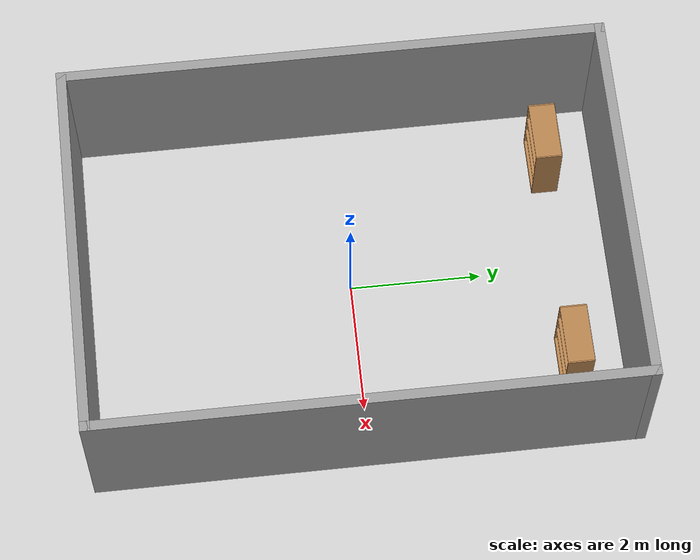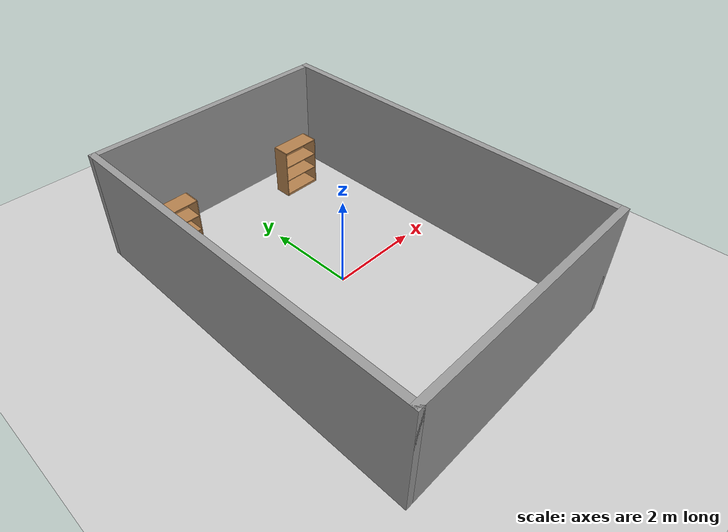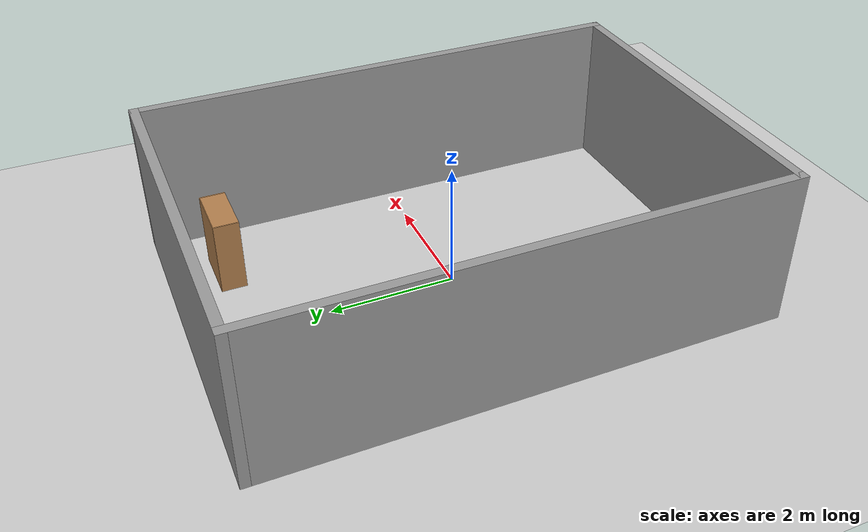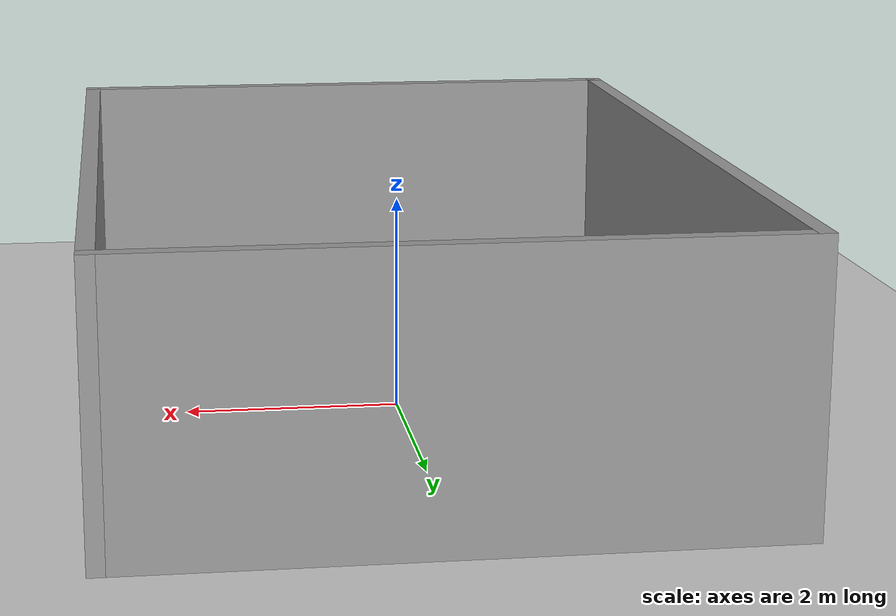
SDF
<sdf version="1.6">
 <world name="default">
  <light name="sun" type="directional">
   <pose>0 0 10 0 -0 0</pose>
   <diffuse>0.8 0.8 0.8 1</diffuse>
   <specular>0.2 0.2 0.2 1</specular>
   <attenuation>
    <range>1000</range>
    <constant>0.9</constant>
    <linear>0.01</linear>
    <quadratic>0.001</quadratic>
   </attenuation>
   <direction>-0.5 0.1 -0.9</direction>
  </light>
  <model name="ground_plane">
   <static>1</static>
   <link name="link">
    <collision name="collision">
     <geometry><plane><normal>0 0 1</normal><size>100 100</size></plane></geometry>
     <surface>
      <contact><collide_bitmask>65535</collide_bitmask></contact>
      <friction><ode><mu>100</mu><mu2>50</mu2></ode></friction>
     </surface>
    </collision>
    <visual name="visual">
     <cast_shadows>0</cast_shadows>
     <geometry><plane><normal>0 0 1</normal><size>100 100</size></plane></geometry>
     <material>
      <script><uri>file://media/materials/scripts/gazebo.material</uri><name>Gazebo/Grey</name></script>
     </material>
    </visual>
   </link>
  </model>
  <gravity>0 0 -9.8</gravity>
  <magnetic_field>6e-06 2.3e-05 -4.2e-05</magnetic_field>
  <atmosphere type="adiabatic"/>
  <physics name="default_physics" default="0" type="ode">
   <max_step_size>0.004</max_step_size>
   <real_time_factor>1</real_time_factor>
   <real_time_update_rate>200</real_time_update_rate>
  </physics>
  <scene><ambient>0.4 0.4 0.4 1</ambient><background>0.7 0.7 0.7 1</background><shadows>0</shadows></scene>
  <audio><device>default</device></audio>
  <spherical_coordinates>
   <surface_model>EARTH_WGS84</surface_model>
   <latitude_deg>0</latitude_deg>
   <longitude_deg>0</longitude_deg>
   <elevation>0</elevation>
   <heading_deg>0</heading_deg>
  </spherical_coordinates>
  <model name="room">
   <pose>0.031206 0.006349 0 0 -0 0</pose>
   <link name="Wall_12">
    <collision name="Wall_12_Collision">
     <geometry><box><size>8.25 0.15 2.5</size></box></geometry>
     <pose>0 0 1.25 0 -0 0</pose>
    </collision>
    <visual name="Wall_12_Visual">
     <pose>0 0 1.25 0 -0 0</pose>
     <geometry><box><size>8.25 0.15 2.5</size></box></geometry>
     <material>
      <script><uri>file://media/materials/scripts/gazebo.material</uri><name>Gazebo/Grey</name></script>
      <ambient>1 1 1 1</ambient>
     </material>
     <meta><layer>0</layer></meta>
    </visual>
    <pose>-2.8 0 0 0 -0 -1.5708</pose>
   </link>
   <link name="Wall_13">
    <collision name="Wall_13_Collision">
     <geometry><box><size>5.75 0.15 2.5</size></box></geometry>
     <pose>0 0 1.25 0 -0 0</pose>
    </collision>
    <visual name="Wall_13_Visual">
     <pose>0 0 1.25 0 -0 0</pose>
     <geometry><box><size>5.75 0.15 2.5</size></box></geometry>
     <material>
      <script><uri>file://media/materials/scripts/gazebo.material</uri><name>Gazebo/Grey</name></script>
      <ambient>1 1 1 1</ambient>
     </material>
     <meta><layer>0</layer></meta>
    </visual>
    <pose>-0 -4.05 0 0 -0 0</pose>
   </link>
   <link name="Wall_14">
    <collision name="Wall_14_Collision">
     <geometry><box><size>8.25 0.15 2.5</size></box></geometry>
     <pose>0 0 1.25 0 -0 0</pose>
    </collision>
    <visual name="Wall_14_Visual">
     <pose>0 0 1.25 0 -0 0</pose>
     <geometry><box><size>8.25 0.15 2.5</size></box></geometry>
     <material>
      <script><uri>file://media/materials/scripts/gazebo.material</uri><name>Gazebo/Grey</name></script>
      <ambient>1 1 1 1</ambient>
     </material>
     <meta><layer>0</layer></meta>
    </visual>
    <pose>2.8 0 0 0 -0 1.5708</pose>
   </link>
   <link name="Wall_15">
    <collision name="Wall_15_Collision">
     <geometry><box><size>5.75 0.15 2.5</size></box></geometry>
     <pose>0 0 1.25 0 -0 0</pose>
    </collision>
    <visual name="Wall_15_Visual">
     <pose>0 0 1.25 0 -0 0</pose>
     <geometry><box><size>5.75 0.15 2.5</size></box></geometry>
     <material>
      <script><uri>file://media/materials/scripts/gazebo.material</uri><name>Gazebo/Grey</name></script>
      <ambient>1 1 1 1</ambient>
     </material>
     <meta><layer>0</layer></meta>
    </visual>
    <pose>-0 4.05 0 0 -0 3.14159</pose>
   </link>
   <static>1</static>
  </model>
  <model name="bookshelf">
   <static>1</static>
   <link name="link">
    <inertial><mass>1</mass></inertial>
    <collision name="back">
     <pose>0 0.005 0.6 0 -0 0</pose>
     <geometry><box><size>0.9 0.01 1.2</size></box></geometry>
    </collision>
    <visual name="visual1">
     <pose>0 0.005 0.6 0 -0 0</pose>
     <geometry><box><size>0.9 0.01 1.2</size></box></geometry>
     <material>
      <script><uri>file://media/materials/scripts/gazebo.material</uri><name>Gazebo/Wood</name></script>
     </material>
    </visual>
    <collision name="left_side">
     <pose>0.45 -0.195 0.6 0 -0 0</pose>
     <geometry><box><size>0.02 0.4 1.2</size></box></geometry>
    </collision>
    <visual name="visual2">
     <pose>0.45 -0.195 0.6 0 -0 0</pose>
     <geometry><box><size>0.02 0.4 1.2</size></box></geometry>
     <material>
      <script><uri>file://media/materials/scripts/gazebo.material</uri><name>Gazebo/Wood</name></script>
     </material>
    </visual>
    <collision name="right_side">
     <pose>-0.45 -0.195 0.6 0 -0 0</pose>
     <geometry><box><size>0.02 0.4 1.2</size></box></geometry>
    </collision>
    <visual name="visual3">
     <pose>-0.45 -0.195 0.6 0 -0 0</pose>
     <geometry><box><size>0.02 0.4 1.2</size></box></geometry>
     <material>
      <script><uri>file://media/materials/scripts/gazebo.material</uri><name>Gazebo/Wood</name></script>
     </material>
    </visual>
    <collision name="bottom">
     <pose>0 -0.195 0.03 0 -0 0</pose>
     <geometry><box><size>0.88 0.4 0.06</size></box></geometry>
    </collision>
    <visual name="visual4">
     <pose>0 -0.195 0.03 0 -0 0</pose>
     <geometry><box><size>0.88 0.4 0.06</size></box></geometry>
     <material>
      <script><uri>file://media/materials/scripts/gazebo.material</uri><name>Gazebo/Wood</name></script>
     </material>
    </visual>
    <collision name="top">
     <pose>0 -0.195 1.19 0 -0 0</pose>
     <geometry><box><size>0.88 0.4 0.02</size></box></geometry>
    </collision>
    <visual name="visual5">
     <pose>0 -0.195 1.19 0 -0 0</pose>
     <geometry><box><size>0.88 0.4 0.02</size></box></geometry>
     <material>
      <script><uri>file://media/materials/scripts/gazebo.material</uri><name>Gazebo/Wood</name></script>
     </material>
    </visual>
    <collision name="low_shelf">
     <pose>0 -0.195 0.43 0 -0 0</pose>
     <geometry><box><size>0.88 0.4 0.02</size></box></geometry>
    </collision>
    <visual name="visual6">
     <pose>0 -0.195 0.43 0 -0 0</pose>
     <geometry><box><size>0.88 0.4 0.02</size></box></geometry>
     <material>
      <script><uri>file://media/materials/scripts/gazebo.material</uri><name>Gazebo/Wood</name></script>
     </material>
    </visual>
    <collision name="high_shelf">
     <pose>0 -0.195 0.8 0 -0 0</pose>
     <geometry><box><size>0.88 0.4 0.02</size></box></geometry>
    </collision>
    <visual name="visual7">
     <pose>0 -0.195 0.8 0 -0 0</pose>
     <geometry><box><size>0.88 0.4 0.02</size></box></geometry>
     <material>
      <script><uri>file://media/materials/scripts/gazebo.material</uri><name>Gazebo/Wood</name></script>
     </material>
    </visual>
   </link>
   <pose>-1.7894 3.3822 0 0 -0 0</pose>
  </model>
  <model name="bookshelf_0">
   <static>1</static>
   <link name="link">
    <inertial><mass>1</mass></inertial>
    <collision name="back">
     <pose>0 0.005 0.6 0 -0 0</pose>
     <geometry><box><size>0.9 0.01 1.2</size></box></geometry>
    </collision>
    <visual name="visual1">
     <pose>0 0.005 0.6 0 -0 0</pose>
     <geometry><box><size>0.9 0.01 1.2</size></box></geometry>
     <material>
      <script><uri>file://media/materials/scripts/gazebo.material</uri><name>Gazebo/Wood</name></script>
     </material>
    </visual>
    <collision name="left_side">
     <pose>0.45 -0.195 0.6 0 -0 0</pose>
     <geometry><box><size>0.02 0.4 1.2</size></box></geometry>
    </collision>
    <visual name="visual2">
     <pose>0.45 -0.195 0.6 0 -0 0</pose>
     <geometry><box><size>0.02 0.4 1.2</size></box></geometry>
     <material>
      <script><uri>file://media/materials/scripts/gazebo.material</uri><name>Gazebo/Wood</name></script>
     </material>
    </visual>
    <collision name="right_side">
     <pose>-0.45 -0.195 0.6 0 -0 0</pose>
     <geometry><box><size>0.02 0.4 1.2</size></box></geometry>
    </collision>
    <visual name="visual3">
     <pose>-0.45 -0.195 0.6 0 -0 0</pose>
     <geometry><box><size>0.02 0.4 1.2</size></box></geometry>
     <material>
      <script><uri>file://media/materials/scripts/gazebo.material</uri><name>Gazebo/Wood</name></script>
     </material>
    </visual>
    <collision name="bottom">
     <pose>0 -0.195 0.03 0 -0 0</pose>
     <geometry><box><size>0.88 0.4 0.06</size></box></geometry>
    </collision>
    <visual name="visual4">
     <pose>0 -0.195 0.03 0 -0 0</pose>
     <geometry><box><size>0.88 0.4 0.06</size></box></geometry>
     <material>
      <script><uri>file://media/materials/scripts/gazebo.material</uri><name>Gazebo/Wood</name></script>
     </material>
    </visual>
    <collision name="top">
     <pose>0 -0.195 1.19 0 -0 0</pose>
     <geometry><box><size>0.88 0.4 0.02</size></box></geometry>
    </collision>
    <visual name="visual5">
     <pose>0 -0.195 1.19 0 -0 0</pose>
     <geometry><box><size>0.88 0.4 0.02</size></box></geometry>
     <material>
      <script><uri>file://media/materials/scripts/gazebo.material</uri><name>Gazebo/Wood</name></script>
     </material>
    </visual>
    <collision name="low_shelf">
     <pose>0 -0.195 0.43 0 -0 0</pose>
     <geometry><box><size>0.88 0.4 0.02</size></box></geometry>
    </collision>
    <visual name="visual6">
     <pose>0 -0.195 0.43 0 -0 0</pose>
     <geometry><box><size>0.88 0.4 0.02</size></box></geometry>
     <material>
      <script><uri>file://media/materials/scripts/gazebo.material</uri><name>Gazebo/Wood</name></script>
     </material>
    </visual>
    <collision name="high_shelf">
     <pose>0 -0.195 0.8 0 -0 0</pose>
     <geometry><box><size>0.88 0.4 0.02</size></box></geometry>
    </collision>
    <visual name="visual7">
     <pose>0 -0.195 0.8 0 -0 0</pose>
     <geometry><box><size>0.88 0.4 0.02</size></box></geometry>
     <material>
      <script><uri>file://media/materials/scripts/gazebo.material</uri><name>Gazebo/Wood</name></script>
     </material>
    </visual>
   </link>
   <pose>1.61207 3.3939 0 0 -0 0</pose>
  </model>
 </world>
</sdf>
